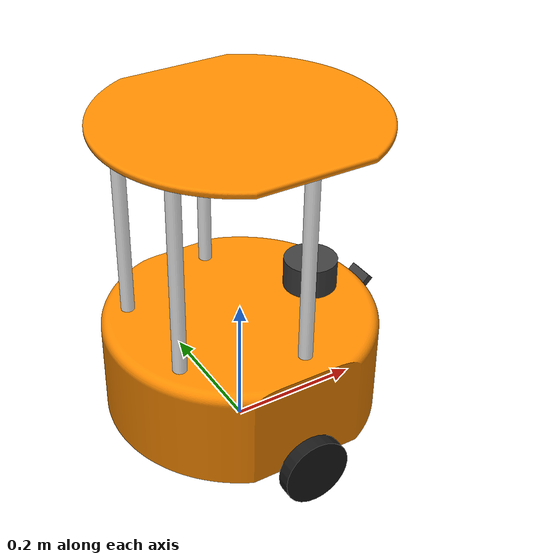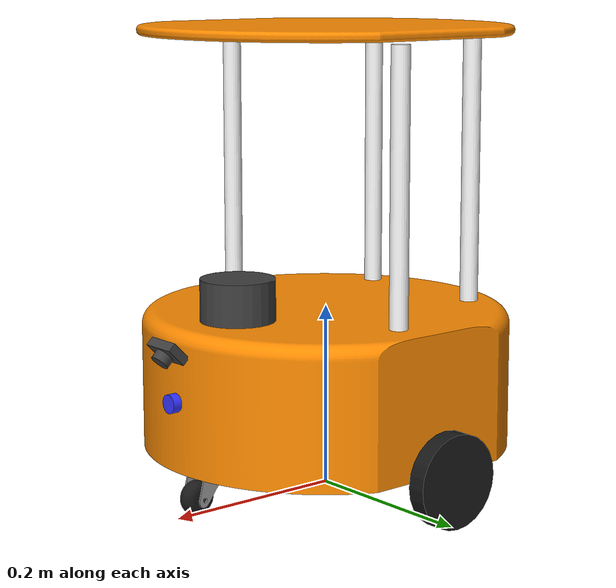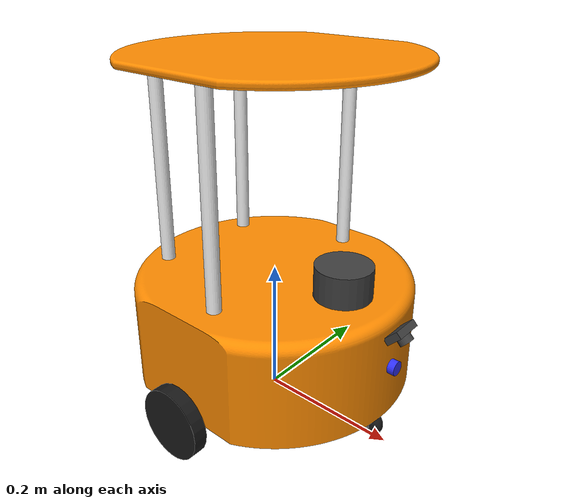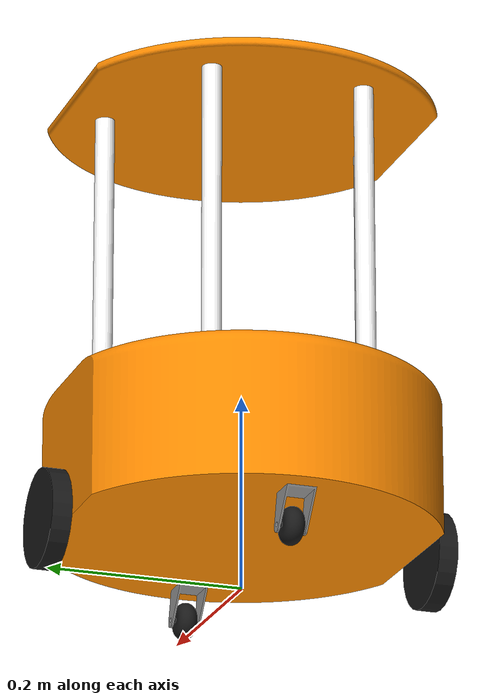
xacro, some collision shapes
<?xml version="1.0"?>
<robot xmlns:xacro="http://www.ros.org/wiki/xacro"  name="obot">

    <material name="white">
        <color rgba="1 1 1 1" />
    </material>

    <material name="grey">
        <color rgba="0.25 0.25 0.25 1"/>
    </material>

    <material name="orange">
        <color rgba="1 0.55 0 1"/>
    </material>

    <material name="blue">
        <color rgba="0.2 0.2 1 1"/>
    </material>

    <material name="black">
        <color rgba="0.1 0.1 0.1 1"/>
    </material>

    <material name="silver">
        <color rgba="0.6 0.6 0.6 1"/>
    </material>

    <xacro:property name="slab_height" value="0.3"/>
    <xacro:property name="gazebo_visual" value="true"/>

    <xacro:arg name="laser_visual" default="true"/>
    <xacro:arg name="imu_visual"   default="true"/>
    <xacro:arg name="sonar_visual"   default="false"/>
    <xacro:arg name="cam_visual"   default="false"/>

    <xacro:include filename="$(find obot_description)/description/inertia_macros.xacro"/>
    <xacro:include filename="$(find obot_description)/description/part_macros.xacro"/>

    <!-- BASE LINK -->

    <link name="base_link">
    </link>

    <!-- CHASSIS LINK -->

    <joint name="chassis_joint" type="fixed">
        <parent link="base_link"/>
        <child link="chassis_link"/>
        <origin xyz="0 0 0.05"/>
    </joint>

    <link name="chassis_link">
        <visual>
            <origin xyz="0 0 0" rpy="0 0 0"/>
            <geometry>
                <xacro:unless value="${gazebo_visual}">
                    <mesh filename="package://obot_description/meshes/chassis.stl"/>
                </xacro:unless>
                <xacro:if value="${gazebo_visual}">
                    <mesh filename="$(find obot_description)/meshes/chassis.stl"/>
                </xacro:if>
            </geometry>
            <material name="orange"/>
        </visual>

        <collision>
            <origin xyz="0 0 0.075" rpy="0 0 0"/>
            <geometry>
                <cylinder radius="0.2" length="0.15"/>
            </geometry>
        </collision>

        <xacro:inertial_cylinder mass="10" length="0.15" radius="0.2">
            <origin xyz="0 0 0.075" rpy="0 0 0"/>
        </xacro:inertial_cylinder>
    </link>

    <gazebo reference="chassis_link">
        <material>Gazebo/Orange</material>
    </gazebo>

    <xacro:include filename="$(find obot_description)/description/add_slab_macros.xacro"/>

    <!-- LEFT WHEEL LINK FRAME -->

    <joint name="left_wheel_joint" type="continuous">
        <parent link="chassis_link"/>
        <child link="left_wheel_link"/>
        <origin xyz="0 0.2 0" rpy="${-pi/2} 0 0"/>
        <axis xyz="0 0 1"/>
    </joint>

    <link name="left_wheel_link">
        <xacro:insert_drive_wheel_link/>
    </link>

    <gazebo reference="left_wheel_link">
        <mu1>1.0</mu1>
        <mu2>1.0</mu2>
        <material>Gazebo/FlatBlack</material>
    </gazebo>

    <!-- RIGHT WHEEL LINK FRAME -->

    <joint name="right_wheel_joint" type="continuous">
        <parent link="chassis_link"/>
        <child link="right_wheel_link"/>
        <origin xyz="0 -0.2 0" rpy="${-pi/2} 0 0"/>
        <axis xyz="0 0 1"/>
    </joint>

    <link name="right_wheel_link">
        <xacro:insert_drive_wheel_link/>
    </link>

    <gazebo reference="right_wheel_link">
        <mu1>1.0</mu1>
        <mu2>1.0</mu2>
        <material>Gazebo/FlatBlack</material>
    </gazebo>

    <!-- FRONT CASTER HOLDER LINK FRAME -->

    <joint name="front_caster_holder_joint" type="continuous">
        <parent link="chassis_link"/>
        <child link="front_caster_holder_link"/>
        <origin xyz="0.16 0 0" rpy="0 0 0"/>
        <axis xyz="0 0 1"/>
        <dynamics friction="0.0100" />
    </joint>

    <link name="front_caster_holder_link">
        <xacro:insert_caster_holder_link/>
    </link>

    <gazebo reference="front_caster_holder_link">
        <mu1>0.01</mu1>
        <mu2>0.01</mu2>
        <material>Gazebo/Silver</material>
    </gazebo>

    <!-- FRONT CASTER WHEEL LINK FRAME -->

    <joint name="front_caster_wheel_joint" type="continuous">
        <parent link="front_caster_holder_link"/>
        <child link="front_caster_wheel_link"/>
        <origin xyz="0.016 0 -0.031" rpy="${-pi/2} 0 0"/>
        <axis xyz="0 0 1"/>
    </joint>

    <link name="front_caster_wheel_link">
        <xacro:insert_caster_wheel_link/>
    </link>

    <gazebo reference="front_caster_wheel_link">
        <mu1>1.0</mu1>
        <mu2>1.0</mu2>
        <fdir1>1 0 0</fdir1>
        <material>Gazebo/FlatBlack</material>
    </gazebo>

    <!-- REAR CASTER HOLDER LINK FRAME -->

    <joint name="rear_caster_holder_joint" type="continuous">
        <parent link="chassis_link"/>
        <child link="rear_caster_holder_link"/>
        <origin xyz="-0.16 0 0" rpy="0 0 0"/>
        <axis xyz="0 0 1"/>
        <dynamics friction="0.0100" />
    </joint>

    <link name="rear_caster_holder_link">
        <xacro:insert_caster_holder_link/>
    </link>

    <gazebo reference="rear_caster_holder_link">
        <mu1>0.01</mu1>
        <mu2>0.01</mu2>
        <material>Gazebo/Silver</material>
    </gazebo>

    <!-- REAR CASTER WHEEL LINK FRAME -->

    <joint name="rear_caster_wheel_joint" type="continuous">
        <parent link="rear_caster_holder_link"/>
        <child link="rear_caster_wheel_link"/>
        <origin xyz="0.016 0 -0.031" rpy="${-pi/2} 0 0"/>
        <axis xyz="0 0 1"/>
    </joint>

    <link name="rear_caster_wheel_link">
        <xacro:insert_caster_wheel_link/>
    </link>

    <gazebo reference="rear_caster_wheel_link">
        <mu1>1.0</mu1>
        <mu2>1.0</mu2>
        <fdir1>1 0 0</fdir1>
        <material>Gazebo/FlatBlack</material>
    </gazebo>

    <xacro:include filename="$(find obot_description)/description/controllers.xacro"/>

    <xacro:include filename="$(find obot_description)/description/sensors/imu.xacro"/>
    <xacro:include filename="$(find obot_description)/description/sensors/lidar.xacro"/>
    <xacro:include filename="$(find obot_description)/description/sensors/cam.xacro"/>
    <xacro:include filename="$(find obot_description)/description/sensors/sonar.xacro"/>

</robot>

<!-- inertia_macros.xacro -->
<robot xmlns:xacro="http://www.ros.org/wiki/xacro" name="obot">

    <!-- Specify some standard inertial calculations https://en.wikipedia.org/wiki/List_of_moments_of_inertia -->
    <!-- These make use of xacro's mathematical functionality -->

    <!-- ################### inertia macros  ############################-->

    <xacro:macro name="inertial_sphere" params="mass radius *origin">
        <inertial>
            <xacro:insert_block name="origin"/>
            <mass value="${mass}" />
            <inertia ixx="${(2/5) * mass * (radius*radius)}" ixy="0.0" ixz="0.0"
                    iyy="${(2/5) * mass * (radius*radius)}" iyz="0.0"
                    izz="${(2/5) * mass * (radius*radius)}" />
        </inertial>
    </xacro:macro>

    <xacro:macro name="inertial_box" params="mass x y z *origin">
        <inertial>
            <xacro:insert_block name="origin"/>
            <mass value="${mass}" />
            <inertia ixx="${(1/12) * mass * (y*y+z*z)}" ixy="0.0" ixz="0.0"
                    iyy="${(1/12) * mass * (x*x+z*z)}" iyz="0.0"
                    izz="${(1/12) * mass * (x*x+y*y)}" />
        </inertial>
    </xacro:macro>

    <xacro:macro name="inertial_cylinder" params="mass length radius *origin">
        <inertial>
            <xacro:insert_block name="origin"/>
            <mass value="${mass}" />
            <inertia ixx="${(1/12) * mass * (3*radius*radius + length*length)}" ixy="0.0" ixz="0.0"
                    iyy="${(1/12) * mass * (3*radius*radius + length*length)}" iyz="0.0"
                    izz="${(1/2) * mass * (radius*radius)}" />
        </inertial>
    </xacro:macro>

</robot>

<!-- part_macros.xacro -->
<robot name="obot" xmlns:xacro="http://www.ros.org/wiki/xacro" >

    <!-- These make use of xacro's mathematical functionality -->

    <xacro:macro name="insert_drive_wheel_link">
        <visual>
            <origin xyz="0 0 0" rpy="0 0 0"/>
            <geometry>
                <xacro:unless value="${gazebo_visual}">
                    <mesh filename="package://obot_description/meshes/wheel.stl"/>
                </xacro:unless>
                <xacro:if value="${gazebo_visual}">
                    <mesh filename="$(find obot_description)/meshes/wheel.stl"/>
                </xacro:if>
            </geometry>
            <material name="black"/>
        </visual>
        <collision>
            <origin xyz="0 0 0" rpy="0 0 0"/>
            <geometry>
                <cylinder radius="0.05" length="0.02"/>
            </geometry>
        </collision>

        <xacro:inertial_cylinder mass="0.8" length="0.02" radius="0.05">
            <origin xyz="0 0 0" rpy="0 0 0"/>
        </xacro:inertial_cylinder>
    </xacro:macro>

    <xacro:macro name="insert_caster_wheel_link">
        <visual>
            <origin xyz="0 0 0" rpy="0 0 0"/>
            <geometry>
                <xacro:unless value="${gazebo_visual}">
                    <mesh filename="package://obot_description/meshes/caster_wheel.stl"/>
                </xacro:unless>
                <xacro:if value="${gazebo_visual}">
                    <mesh filename="$(find obot_description)/meshes/caster_wheel.stl"/>
                </xacro:if>
            </geometry>
            <material name="black"/>
        </visual>
        <collision>
            <origin xyz="0 0 0" rpy="0 0 0"/>
            <geometry>
                <cylinder radius="0.019" length="0.02"/>
            </geometry>
        </collision>

        <xacro:inertial_cylinder mass="0.4" length="0.02" radius="0.019">
            <origin xyz="0 0 0" rpy="0 0 0"/>
        </xacro:inertial_cylinder>
    </xacro:macro>

    <xacro:macro name="insert_caster_holder_link">
        <visual>
            <origin xyz="0 0 0" rpy="0 0 0"/>
            <geometry>
                <xacro:unless value="${gazebo_visual}">
                    <mesh filename="package://obot_description/meshes/caster_holder.stl"/>
                </xacro:unless>
                <xacro:if value="${gazebo_visual}">
                    <mesh filename="$(find obot_description)/meshes/caster_holder.stl"/>
                </xacro:if>
            </geometry>
            <material name="silver"/>
        </visual>
        <collision>
            <origin xyz="0 0 0" rpy="0 0 0"/>
            <geometry>
                <xacro:unless value="${gazebo_visual}">
                    <mesh filename="package://obot_description/meshes/caster_holder.stl"/>
                </xacro:unless>
                <xacro:if value="${gazebo_visual}">
                    <mesh filename="$(find obot_description)/meshes/caster_holder.stl"/>
                </xacro:if>
            </geometry>
        </collision>

        <xacro:inertial_cylinder mass="0.2" length="0.04" radius="0.02">
            <origin xyz="0 0 0" rpy="0 0 0"/>
        </xacro:inertial_cylinder>
    </xacro:macro>

    <xacro:macro name="insert_support" params="x y">
        <visual>
            <origin xyz="${x} ${y} ${slab_height/2}" rpy="0 0 0"/>
            <geometry>
                <cylinder radius="0.01" length="${slab_height}"/>
            </geometry>
            <material name="white"/>
        </visual>

        <collision>
            <origin xyz="${x} ${y} ${slab_height/2}" rpy="0 0 0"/>
            <geometry>
                <cylinder radius="0.01" length="${slab_height}"/>
            </geometry>
        </collision>
    </xacro:macro>

    <xacro:macro name="box_with_fillet" params="x y z size_x size_y size_z fillet_radius material">
            <!-- logitudinal box -->
            <visual>
                <origin xyz="${x} ${y} ${z}" rpy="0 0 0"/>
                <geometry>
                    <box size="${size_x} ${size_y-(2*fillet_radius)} ${size_z}"/>
                </geometry>
                <material name="${material}"/>
            </visual>
            <collision>
                <origin xyz="${x} ${y} ${z}" rpy="0 0 0"/>
                <geometry>
                    <box size="${size_x} ${size_y-(2*fillet_radius)} ${size_z}"/>
                </geometry>
            </collision>

            <!-- lateral box -->
            <visual>
                <origin xyz="${x} ${y} ${z}" rpy="0 0 0"/>
                <geometry>
                    <box size="${size_x-(2*fillet_radius)} ${size_y} ${size_z}"/>
                </geometry>
                <material name="${material}"/>
            </visual>
            <collision>
                <origin xyz="${x} ${y} ${z}" rpy="0 0 0"/>
                <geometry>
                    <box size="${size_x-(2*fillet_radius)} ${size_y} ${size_z}"/>
                </geometry>
            </collision>

            <!-- cylinder1 -->
            <visual>
                <origin xyz="${x+((size_x/2)-fillet_radius)} ${y+((size_y/2)-fillet_radius)} ${z}" rpy="0 0 0"/>
                <geometry>
                    <cylinder length="${size_z}" radius="${fillet_radius}"/>
                </geometry>
                <material name="${material}"/>
            </visual>
            <collision>
                <origin xyz="${x+((size_x/2)-fillet_radius)} ${y+((size_y/2)-fillet_radius)} ${z}" rpy="0 0 0"/>
                <geometry>
                    <cylinder length="${size_z}" radius="${fillet_radius}"/>
                </geometry>
            </collision>

            <!-- cylinder2 -->
            <visual>
                <origin xyz="${x+((size_x/2)-fillet_radius)} ${y-((size_y/2)-fillet_radius)} ${z}" rpy="0 0 0"/>
                <geometry>
                    <cylinder length="${size_z}" radius="${fillet_radius}"/>
                </geometry>
                <material name="${material}"/>
            </visual>
            <collision>
                <origin xyz="${x+((size_x/2)-fillet_radius)} ${y-((size_y/2)-fillet_radius)} ${z}" rpy="0 0 0"/>
                <geometry>
                    <cylinder length="${size_z}" radius="${fillet_radius}"/>
                </geometry>
            </collision>

            <!-- cylinder3 -->
            <visual>
                <origin xyz="${x-((size_x/2)-fillet_radius)} ${y+((size_y/2)-fillet_radius)} ${z}" rpy="0 0 0"/>
                <geometry>
                    <cylinder length="${size_z}" radius="${fillet_radius}"/>
                </geometry>
                <material name="${material}"/>
            </visual>
            <collision>
                <origin xyz="${x-((size_x/2)-fillet_radius)} ${y+((size_y/2)-fillet_radius)} ${z}" rpy="0 0 0"/>
                <geometry>
                    <cylinder length="${size_z}" radius="${fillet_radius}"/>
                </geometry>
            </collision>

            <!-- cylinder4 -->
            <visual>
                <origin xyz="${x-((size_x/2)-fillet_radius)} ${y-((size_y/2)-fillet_radius)} ${z}" rpy="0 0 0"/>
                <geometry>
                    <cylinder length="${size_z}" radius="${fillet_radius}"/>
                </geometry>
                <material name="${material}"/>
            </visual>
            <collision>
                <origin xyz="${x-((size_x/2)-fillet_radius)} ${y-((size_y/2)-fillet_radius)} ${z}" rpy="0 0 0"/>
                <geometry>
                    <cylinder length="${size_z}" radius="${fillet_radius}"/>
                </geometry>
            </collision>
    </xacro:macro>

    <xacro:property name="wheel_radius" value="0.05"/>
    <xacro:property name="wheel_width" value="0.02"/>
    <xacro:property name="wheel_mass" value="0.5"/>
    <xacro:property name="wheel_color" value="black"/>
    <xacro:property name="rim_color" value="red"/>

   <xacro:macro name="insert_drive_wheel">
        <visual>
            <origin xyz="0 0 0" rpy="0 0 0"/>
            <geometry>
                <cylinder radius="${wheel_radius}" length="${wheel_width}"/>
            </geometry>
            <material name="${wheel_color}"/>
        </visual>
        <collision>
           <origin xyz="0 0 0" rpy="0 0 0"/>
            <geometry>
                <cylinder radius="${wheel_radius}" length="${wheel_width}"/>
            </geometry>
        </collision>
        <xacro:inertial_cylinder mass="${wheel_mass}" length="${wheel_width}" radius="${wheel_radius}">
            <origin xyz="0 0 0" rpy="0 0 0"/>
        </xacro:inertial_cylinder>
    </xacro:macro>

    <xacro:macro name="insert_wheel_rim">
        <visual>
            <origin xyz="0 0 0" rpy="0 0 0"/>
            <geometry>
                <box size="0.01 ${wheel_radius*1.2} ${wheel_width+0.005}"/>
            </geometry>
            <material name="${rim_color}"/>
        </visual>
        <visual>
            <origin xyz="0 0 0" rpy="0 0 ${pi/2}"/>
            <geometry>
                <box size="0.01 ${wheel_radius*1.2} ${wheel_width+0.005}"/>
            </geometry>
            <material name="${rim_color}"/>
        </visual>
        <visual>
            <origin xyz="0 0 0" rpy="0 0 ${-pi/4}"/>
            <geometry>
                <box size="0.01 ${wheel_radius*1.2} ${wheel_width+0.005}"/>
            </geometry>
            <material name="${rim_color}"/>
        </visual>
        <visual>
            <origin xyz="0 0 0" rpy="0 0 ${pi/4}"/>
            <geometry>
                <box size="0.01 ${wheel_radius*1.2} ${wheel_width+0.005}"/>
            </geometry>
            <material name="${rim_color}"/>
        </visual>
    </xacro:macro>

</robot>

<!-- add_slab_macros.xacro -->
<robot name="obot" xmlns:xacro="http://www.ros.org/wiki/xacro" >

    <xacro:property name="chassis_height" value="0.15"/>
    <xacro:property name="chassis_offset" value="0.0"/>
    <xacro:property name="support_link_radius" value="0.01"/>

    <!--  add slab support link -->

    <joint name="support1_joint" type="fixed">
        <parent link="chassis_link"/>
        <child link="support1_link"/>
        <origin xyz="${chassis_offset+0.02} 0.14 ${chassis_height}"/>
    </joint>

    <link name="support1_link">
        <visual>
            <origin xyz="0 0 ${(slab_height-0.01)/2}" rpy="0 0 0"/>
            <geometry>
                <cylinder radius="${support_link_radius}" length="${slab_height-0.01}"/>
            </geometry>
            <material name="white"/>
        </visual>
        <collision>
           <origin xyz="0 0 ${(slab_height-0.01)/2}" rpy="0 0 0"/>
            <geometry>
                <cylinder radius="${support_link_radius}" length="${slab_height-0.01}"/>
            </geometry>
        </collision>
        <xacro:inertial_cylinder mass="0.05" length="${slab_height-0.01}" radius="${support_link_radius}">
            <origin xyz="0 0 0" rpy="0 0 0"/>
        </xacro:inertial_cylinder>
    </link>

    <gazebo reference="support1_link">
        <material>Gazebo/White</material>
    </gazebo>

    <joint name="support2_joint" type="fixed">
        <parent link="chassis_link"/>
        <child link="support2_link"/>
        <origin xyz="${chassis_offset+0.02} -0.14 ${chassis_height}"/>
    </joint>

    <link name="support2_link">
        <visual>
            <origin xyz="0 0 ${(slab_height-0.01)/2}" rpy="0 0 0"/>
            <geometry>
                <cylinder radius="${support_link_radius}" length="${slab_height-0.01}"/>
            </geometry>
            <material name="white"/>
        </visual>
        <collision>
           <origin xyz="0 0 ${(slab_height-0.01)/2}" rpy="0 0 0"/>
            <geometry>
                <cylinder radius="${support_link_radius}" length="${slab_height-0.01}"/>
            </geometry>
        </collision>
        <xacro:inertial_cylinder mass="0.05" length="${slab_height-0.01}" radius="${support_link_radius}">
            <origin xyz="0 0 0" rpy="0 0 0"/>
        </xacro:inertial_cylinder>
    </link>

    <gazebo reference="support2_link">
        <material>Gazebo/White</material>
    </gazebo>

    <joint name="support3_joint" type="fixed">
        <parent link="chassis_link"/>
        <child link="support3_link"/>
        <origin xyz="${chassis_offset-0.14} -0.08 ${chassis_height}"/>
    </joint>

    <link name="support3_link">
        <visual>
            <origin xyz="0 0 ${(slab_height-0.01)/2}" rpy="0 0 0"/>
            <geometry>
                <cylinder radius="${support_link_radius}" length="${slab_height-0.01}"/>
            </geometry>
            <material name="white"/>
        </visual>
        <collision>
           <origin xyz="0 0 ${(slab_height-0.01)/2}" rpy="0 0 0"/>
            <geometry>
                <cylinder radius="${support_link_radius}" length="${slab_height-0.01}"/>
            </geometry>
        </collision>
        <xacro:inertial_cylinder mass="0.05" length="${slab_height-0.01}" radius="${support_link_radius}">
            <origin xyz="0 0 0" rpy="0 0 0"/>
        </xacro:inertial_cylinder>
    </link>

    <gazebo reference="support3_link">
        <material>Gazebo/White</material>
    </gazebo>

    <joint name="support4_joint" type="fixed">
        <parent link="chassis_link"/>
        <child link="support4_link"/>
        <origin xyz="${chassis_offset-0.14} 0.08 ${chassis_height}"/>
    </joint>

    <link name="support4_link">
        <visual>
            <origin xyz="0 0 ${(slab_height-0.01)/2}" rpy="0 0 0"/>
            <geometry>
                <cylinder radius="${support_link_radius}" length="${slab_height-0.01}"/>
            </geometry>
            <material name="white"/>
        </visual>
        <collision>
           <origin xyz="0 0 ${(slab_height-0.01)/2}" rpy="0 0 0"/>
            <geometry>
                <cylinder radius="${support_link_radius}" length="${slab_height-0.01}"/>
            </geometry>
        </collision>
        <xacro:inertial_cylinder mass="0.05" length="${slab_height-0.01}" radius="${support_link_radius}">
            <origin xyz="0 0 0" rpy="0 0 0"/>
        </xacro:inertial_cylinder>
    </link>

    <gazebo reference="support4_link">
        <material>Gazebo/White</material>
    </gazebo>

    <joint name="slab_joint" type="fixed">
        <parent link="chassis_link"/>
        <child link="slab_link"/>
        <origin xyz="${chassis_offset} 0 ${chassis_height+slab_height-0.01}"/>
    </joint>

    <link name="slab_link">
         <visual>
            <origin xyz="0 0 0.005" rpy="0 0 0"/>
            <geometry>
                <xacro:unless value="${gazebo_visual}">
                    <mesh filename="package://obot_description/meshes/slab.stl"/>
                </xacro:unless>
                <xacro:if value="${gazebo_visual}">
                    <mesh filename="$(find obot_description)/meshes/slab.stl"/>
                </xacro:if>
            </geometry>
            <material name="orange"/>
        </visual>

        <collision>
            <origin xyz="0 0 0.005" rpy="0 0 0"/>
            <geometry>
                <cylinder radius="0.2" length="0.01"/>
            </geometry>
        </collision>

        <xacro:inertial_cylinder mass="0.05" length="0.005" radius="0.2">
            <origin xyz="0 0 0.005" rpy="0 0 0"/>
        </xacro:inertial_cylinder>
    </link>

    <gazebo reference="slab_link">
        <material>Gazebo/Orange</material>
    </gazebo>

</robot>

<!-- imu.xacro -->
<robot xmlns:xacro="http://www.ros.org/wiki/xacro"  name="robo_car">

  <!-- IMU LINK FRAME -->

    <joint name="imu_joint" type="fixed">
        <parent link="chassis_link"/>
        <child link="imu_link"/>
        <origin xyz="0 0 0.15" rpy="0 0 0"/>
        <axis xyz="0 0 0"/>
    </joint>

    <link name="imu_link"/>

    <gazebo reference="imu_link">
        <sensor name="imu" type="imu">
            <always_on>true</always_on>
            <update_rate>30</update_rate>
            <visualize>$(arg imu_visual)</visualize>
            <imu>
            <angular_velocity>
                <x>
                <noise type="gaussian">
                    <mean>0.0</mean>
                    <stddev>2e-4</stddev>
                </noise>
                </x>
                <y>
                <noise type="gaussian">
                    <mean>0.0</mean>
                    <stddev>2e-4</stddev>
                </noise>
                </y>
                <z>
                <noise type="gaussian">
                    <mean>0.0</mean>
                    <stddev>2e-4</stddev>
                </noise>
                </z>
            </angular_velocity>
            <linear_acceleration>
                <x>
                <noise type="gaussian">
                    <mean>0.0</mean>
                    <stddev>1.7e-2</stddev>
                </noise>
                </x>
                <y>
                <noise type="gaussian">
                    <mean>0.0</mean>
                    <stddev>1.7e-2</stddev>
                </noise>
                </y>
                <z>
                <noise type="gaussian">
                    <mean>0.0</mean>
                    <stddev>1.7e-2</stddev>
                </noise>
                </z>
            </linear_acceleration>
            </imu>
            <plugin name="imu_plugin" filename="libgazebo_ros_imu_sensor.so">
                <ros>
                    <namespace>imu</namespace>
                    <remapping>~/out:=data</remapping>
                </ros>
                <initial_orientation_as_reference>false</initial_orientation_as_reference>
                <frame_name>imu_link</frame_name>
            </plugin>
        </sensor>
    </gazebo>

</robot>

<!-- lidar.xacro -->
<robot xmlns:xacro="http://www.ros.org/wiki/xacro"  name="robo_car">

    <!-- LIDAR LINK FRAME -->

    <joint name="lidar_joint" type="fixed">
        <parent link="chassis_link"/>
        <child link="lidar_link"/>
        <origin xyz="0.12 0 0.18" rpy="0 0 0"/>
        <axis xyz="0 0 0"/>
    </joint>

    <link name="lidar_link">
    <visual>
      <origin xyz="0 0 -0.01" rpy="0 0 0"/>
      <geometry>
        <cylinder radius="0.04" length="0.05" />
      </geometry>
      <material name="grey"/>
    </visual>

    <collision>
      <origin xyz="0 0 -0.01" rpy="0 0 0"/>
      <geometry>
        <cylinder radius="0.04" length="0.05" />
      </geometry>
    </collision>

    <xacro:inertial_cylinder mass="0.2" length="0.05" radius="0.04">
            <origin xyz="0 0 -0.01" rpy="0 0 0"/>
        </xacro:inertial_cylinder>
    </link>

    <gazebo reference="lidar_link">
        <material>Gazebo/DarkGrey</material>
        <sensor name="lidar" type="ray">
            <always_on>true</always_on>
            <visualize>$(arg laser_visual)</visualize>
            <pose>0.0 0 0.0 0 0 0</pose>
            <update_rate>15</update_rate>
            <ray>
                <scan>
                <horizontal>
                    <samples>360</samples>
                    <resolution>1</resolution>
                    <min_angle>${-pi/1.5}</min_angle>
                    <max_angle>${pi/1.5}</max_angle>
                </horizontal>
                </scan>
                <range>
                    <min>0.1</min>
                    <max>5</max>
                    <resolution>0.01</resolution>
                </range>
                <noise>
                    <type>gaussian</type>
                    <mean>0.0</mean>
                    <stddev>0.01</stddev>
                </noise>
            </ray>
            <plugin name="laser_plugin" filename="libgazebo_ros_ray_sensor.so">
            <ros>
                <remapping>~/out:=scan</remapping>
            </ros>
            <output_type>sensor_msgs/LaserScan</output_type>
            <frame_name>lidar_link</frame_name>
            </plugin>
        </sensor>
    </gazebo>

</robot>

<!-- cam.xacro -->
<robot xmlns:xacro="http://www.ros.org/wiki/xacro"  name="robo_car">

    <xacro:property name="line_sense_angle"   value="${pi/2.5}"/>

    <xacro:property name="line_sense_mode"   value="false"/>

    <!-- CAMERA LINK FRAME -->

    <joint name="cam_joint" type="fixed">
        <parent link="chassis_link"/>
        <child link="cam_link"/>
        <xacro:if value="${line_sense_mode}">
            <origin xyz="0.22 0 0.12" rpy="0 ${line_sense_angle} 0"/>
        </xacro:if>
        <xacro:unless value="${line_sense_mode}">
            <origin xyz="0.22 0 0.12" rpy="0 ${pi/4} 0"/>
        </xacro:unless>
    </joint>

    <link name="cam_link">
        <visual>
            <origin xyz="-0.005 0 0" rpy="0 ${pi/2} 0"/>
            <geometry>
                <cylinder radius="0.01" length="0.01"/>
            </geometry>
            <material name="grey"/>
        </visual>
        <visual>
            <origin xyz="-0.015 0 0" rpy="0 0 0"/>
            <geometry>
                <box size="0.01 0.04 0.025" />
            </geometry>
            <material name="grey"/>
        </visual>
        <collision>
            <origin xyz="-0.01 0 0" rpy="0 0 0"/>
            <geometry>
                <box size="0.02 0.04 0.025"/>
            </geometry>
        </collision>
        <xacro:inertial_box mass="0.0005" x="0.02" y="0.04" z="0.025">
            <origin xyz="-0.01 0 0" rpy="0 0 0"/>
        </xacro:inertial_box>
    </link>

    <joint name="cam_optical_joint" type="fixed">
        <parent link="cam_link"/>
        <child link="cam_optical_link"/>
        <origin xyz="0 0 0" rpy="${-pi/2} 0 ${-pi/2}"/>
    </joint>

    <link name="cam_optical_link"/>

    <gazebo reference="cam_link">
        <material>Gazebo/DarkGrey</material>

        <sensor type="camera" name="camera">
            <visualize>$(arg cam_visual)</visualize>
            <update_rate>15.0</update_rate>
            <camera name="cam">
                <horizontal_fov>1.4</horizontal_fov>
                <image>
                    <width>320</width>
                    <height>240</height>
                    <format>R8G8B8</format>
                </image>
                <clip>
                    <near>0.05</near>
                    <far>5</far>
                </clip>
                <noise>
                    <type>gaussian</type>
                    <mean>0.0</mean>
                    <stddev>0.007</stddev>
                </noise>
            </camera>
            <plugin name="rgb_cam_plugin" filename="libgazebo_ros_camera.so">
                <!-- Set camera name. If empty, defaults to sensor name (i.e. "sensor_name") -->
                <camera_name>cam</camera_name>
                <!-- Set TF frame name. If empty, defaults to link name (i.e. "link_name") -->
                <frame_name>cam_optical_link</frame_name>
                <hack_baseline>0.2</hack_baseline>
            </plugin>
        </sensor>
    </gazebo>

</robot>

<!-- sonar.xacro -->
<robot xmlns:xacro="http://www.ros.org/wiki/xacro"  name="robo_car">

    <xacro:property name="deg2rad" value="0.017460317"/>
    <xacro:property name="scan_angle" value="1"/>

  <!-- SONAR LINK FRAME -->

    <joint name="sonar_joint" type="fixed">
        <parent link="chassis_link"/>
        <child link="sonar_link"/>
        <origin xyz="0.21 0 0.075" rpy="0 0 0"/>
        <axis xyz="0 0 0"/>
    </joint>

    <link name="sonar_link">
        <visual>
            <origin xyz="-0.005 0 0" rpy="0 ${pi/2} 0"/>
            <geometry>
                <cylinder radius="0.01" length="0.01" />
            </geometry>
            <material name="blue"/>
        </visual>

        <collision>
            <origin xyz="-0.005 0 0" rpy="0 ${pi/2} 0"/>
            <geometry>
                <cylinder radius="0.01" length="0.01" />
            </geometry>
        </collision>

        <xacro:inertial_cylinder mass="0.0005" length="0.01" radius="0.01">
            <origin xyz="-0.005 0 0" rpy="0 0 0"/>
        </xacro:inertial_cylinder>
    </link>

    <gazebo reference="sonar_link">
        <material>Gazebo/Blue</material>

        <sensor name="sonar" type="ray">
            <always_on>true</always_on>
            <visualize>$(arg sonar_visual)</visualize>
            <pose>0.0 0 0.0 0 0 0</pose>
            <update_rate>20</update_rate>
            <ray>
                <scan>
                    <horizontal>
                    <samples>20</samples>
                    <resolution>1</resolution>
                    <min_angle>${-scan_angle * deg2rad}</min_angle>
                    <max_angle>${scan_angle * deg2rad}</max_angle>
                    </horizontal>
                    <vertical>
                    <samples>20</samples>
                    <resolution>1</resolution>
                    <min_angle>${-scan_angle * deg2rad}</min_angle>
                    <max_angle>${scan_angle * deg2rad}</max_angle>
                    </vertical>
                </scan>
                <range>
                    <min>0.01</min>
                    <max>2</max>
                    <resolution>0.02</resolution>
                </range>
            </ray>

            <plugin name="sonar_plugin" filename="libgazebo_ros_ray_sensor.so">
                <ros>
                    <namespace>sonar</namespace>
                    <remapping>~/out:=range</remapping>
                </ros>
                <output_type>sensor_msgs/Range</output_type>
                <radiation_type>ultrasound</radiation_type>
                <frame_name>sonar_link</frame_name>
            </plugin>
        </sensor>
    </gazebo>

</robot>
